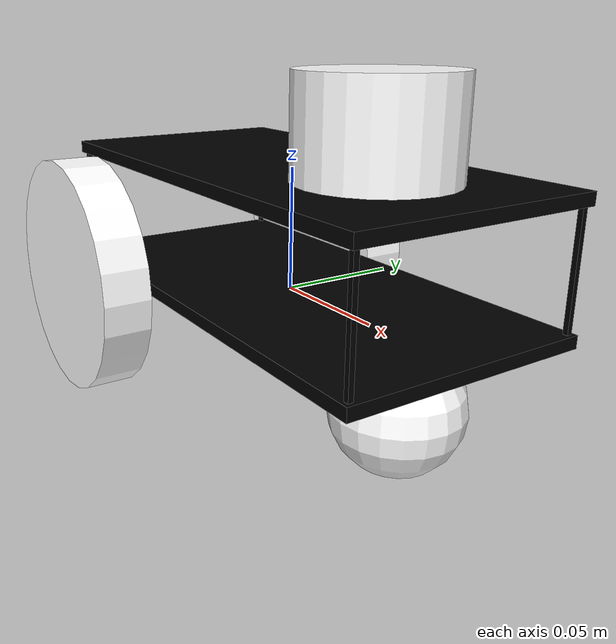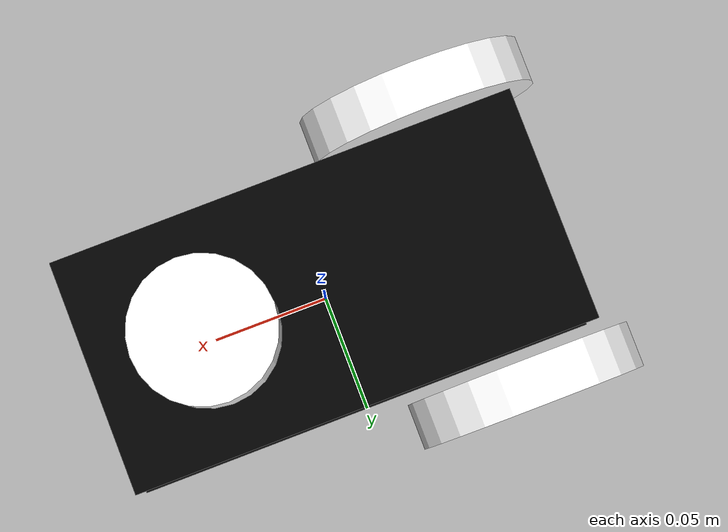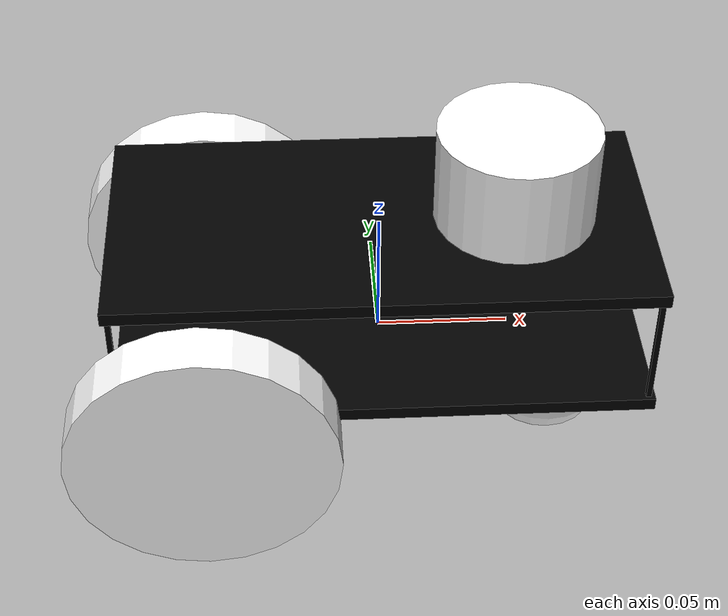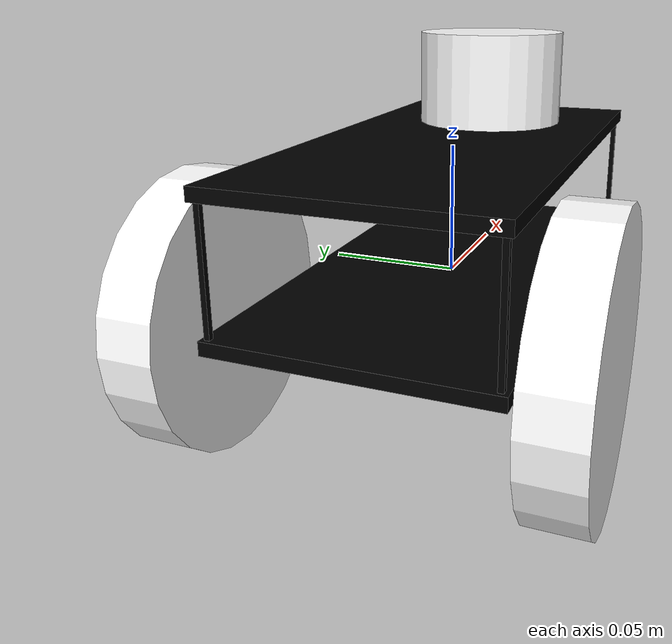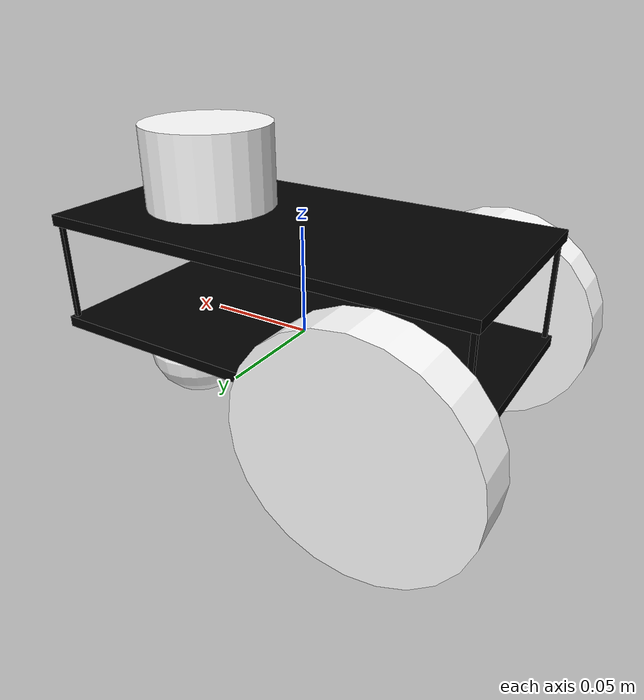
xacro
<?xml version="1.0"?>
<robot name="jo_bot" xmlns:xacro="http://ros.org/wiki/xacro">

  <xacro:include filename="$(find my_robot_description)/urdf/my_robot.gazebo" />

  <xacro:property name="pi" value="3.1415926535897931" />
  <xacro:property name="base_width" value="0.1" />
  <xacro:property name="base_length" value="0.2" />
  <xacro:property name="base_height" value="0.005" />
  <xacro:property name="wheel_diameter" value="0.1" />
  <xacro:property name="wheel_width" value="0.02" />
  <xacro:property name="wheel_offset" value="0.005" />
  <xacro:property name="caster_wheel_diameter" value="${wheel_diameter/2}" />
  <xacro:property name="pillar_width" value="0.002" />
  <xacro:property name="pillar_length" value="0.002" />
  <xacro:property name="pillar_height" value="0.05" />
  <xacro:property name="laser_radius" value="0.03" />
  <xacro:property name="laser_height" value="0.04" />

  <xacro:macro name="box_inertia" params="m x y z">
          <inertia  ixx="${m*(y*y+z*z)/12}" ixy = "0" ixz = "0"
                    iyy="${m*(x*x+z*z)/12}" iyz = "0"
                    izz="${m*(x*x+z*z)/12}" />
  </xacro:macro>

  <xacro:macro name="cylinder_inertia" params="m r h">
      <inertia  ixx="${m*(3*r*r+h*h)/12}" ixy = "0" ixz = "0"
                    iyy="${m*(3*r*r+h*h)/12}" iyz = "0"
                    izz="${m*r*r/2}" />
  </xacro:macro>

  <xacro:macro name="sphere_inertia" params="m r">
          <inertia  ixx="${2*m*r*r/5}" ixy = "0" ixz = "0"
                    iyy="${2*m*r*r/5}" iyz = "0"
                    izz="${2*m*r*r/5}" />
  </xacro:macro>

  <xacro:macro name="box_inertial" params="m x y z">
    <inertial>
      <origin xyz="0 0 0" rpy=" 0 0 0"/>
      <mass value="${m}" />
      <xacro:box_inertia m="${m}" x="${x}" y ="${y}" z="${z}" />
    </inertial>
  </xacro:macro>

  <xacro:macro name="cylinder_inertial" params="m r h">
    <inertial>
      <mass value="${m}" />
      <xacro:cylinder_inertia m="${m}" r="${r}" h="${h}" />
      <origin xyz="0 0 0" rpy="0 ${pi/2} 0"/>
    </inertial>
  </xacro:macro>

  <xacro:macro name="cylinder_inertial_sensor" params="m r h">
    <inertial>
      <mass value="${m}" />
      <xacro:cylinder_inertia m="${m}" r="${r}" h="${h}" />
      <origin xyz="0 0 0" rpy="0 0 0"/>
    </inertial>
  </xacro:macro>

  <xacro:macro name="sphere_inertial" params="m r">
    <inertial>
      <mass value="${m}" />
      <xacro:sphere_inertia m="${m}" r="${r}" />
    </inertial>
  </xacro:macro>

  <link name="base_footprint" />

  <joint name="base_footprint_joint" type="fixed">
    <parent link="base_footprint" />
    <child link="base_link" />
    <origin xyz="0 0 0" rpy="0 0 ${-pi / 2}" />
  </joint>

  <link name="base_link">
    <visual>
      <geometry>
        <box size="${base_width} ${base_length} ${base_height}" />
      </geometry>
      <material name="black">
        <color rgba="0.0 0.0 0.0 1.0"/>
      </material>
    </visual>
    <collision>
      <geometry>
        <box size="${base_width} ${base_length} ${base_height}" />
      </geometry>
    </collision>
    <xacro:box_inertial m="5" x="${base_width}" y="${base_length}" z="${base_height}"/>
  </link>

  <xacro:macro name="wheel" params="prefix reflect">
    <link name="${prefix}_wheel">
      <visual>
        <origin xyz="0 0 0" rpy="0 ${pi/2} 0" />
        <geometry>
          <cylinder radius="${wheel_diameter/2}" length="${wheel_width}"/>
        </geometry>
        <material name="White">
          <color rgba="1.0 1.0 1.0 1.0"/>
        </material>
      </visual>
      <collision>
        <origin xyz="0 0 0" rpy="0 ${pi/2} 0" />
        <geometry>
          <cylinder radius="${wheel_diameter/2}" length="${wheel_width}"/>
        </geometry>
      </collision>
      <xacro:cylinder_inertial m="1" r="${wheel_diameter/2}" h="${wheel_width}"/>
    </link>
    <joint name="${prefix}_wheel_joint" type="continuous">
      <axis xyz="-1 0 0" rpy="0 0 0" />
      <parent link="base_link"/>
      <child link="${prefix}_wheel"/>
      <origin xyz="${reflect * base_width/2 + reflect * wheel_width/2 + reflect * wheel_offset} ${-base_length*0.333} 0" rpy="0 0 0"/>
    </joint>

  </xacro:macro>

  <xacro:wheel prefix="left" reflect="-1" />
  <xacro:wheel prefix="right" reflect="1" />

  <link name="caster_wheel">
    <visual>
      <geometry>
        <sphere radius="${wheel_diameter/4}" />
      </geometry>
      <material name="White" />
    </visual>
    <collision>
      <geometry>
        <sphere radius="${wheel_diameter/4}" />
      </geometry>
      <surface>
        <friction>
          <ode>
            <mu>0</mu>
            <mu2>0</mu2>
            <slip1>1.0</slip1>
            <slip2>1.0</slip2>
          </ode>
        </friction>
      </surface>
    </collision>
    <xacro:sphere_inertial m="5" r="${caster_wheel_diameter}"/>
  </link>

  <joint name="caster_wheel_joint" type="fixed">
    <parent link="base_link"/>
    <child link="caster_wheel"/>
    <origin xyz="0 ${base_length/9*3} ${-caster_wheel_diameter/2}" rpy="0 0 0"/>
  </joint>

  <xacro:macro name="front_pillar" params="prefix reflect">
    <link name="${prefix}_front_pillar">
      <visual>
        <geometry>
          <box size="${pillar_width} ${pillar_length} ${pillar_height}" />
        </geometry>
        <material name="black">
          <color rgba="0.0 0.0 0.0 1.0"/>
        </material>
      </visual>
      <collision>
        <geometry>
          <box size="${pillar_width} ${pillar_length} ${pillar_height}" />
        </geometry>
      </collision>
    <xacro:box_inertial m="1" x="${pillar_width}" y="${pillar_length}" z="${pillar_height}"/>
    </link>
    <joint name="${prefix}_front_pillar_joint" type="fixed">
      <parent link="base_link"/>
      <child link="${prefix}_front_pillar"/>
      <origin xyz="${reflect * base_width/2 - reflect * wheel_offset * 0.5} ${base_length*0.5 - wheel_offset * 0.5} ${pillar_height/2}" rpy="0 0 0"/>
    </joint>
  </xacro:macro>

  <xacro:macro name="back_pillar" params="prefix reflect">
    <link name="${prefix}_back_pillar">
      <visual>
        <geometry>
          <box size="${pillar_width} ${pillar_length} ${pillar_height}" />
        </geometry>
        <material name="black">
          <color rgba="0.0 0.0 0.0 1.0"/>
        </material>
      </visual>
      <collision>
        <geometry>
          <box size="${pillar_width} ${pillar_length} ${pillar_height}" />
        </geometry>
      </collision>
    <xacro:box_inertial m="1" x="${pillar_width}" y="${pillar_length}" z="${pillar_height}"/>
    </link>
    <joint name="${prefix}_back_pillar_joint" type="fixed">
      <parent link="base_link"/>
      <child link="${prefix}_back_pillar"/>
      <origin xyz="${reflect * base_width/2 - reflect * wheel_offset * 0.5} ${-base_length*0.5 + wheel_offset * 0.5} ${pillar_height/2}" rpy="0 0 0"/>
    </joint>
  </xacro:macro>

  <xacro:front_pillar prefix="left" reflect="-1" />
  <xacro:front_pillar prefix="right" reflect="1" />
  <xacro:back_pillar prefix="left" reflect="-1" />
  <xacro:back_pillar prefix="right" reflect="1" />

  <link name="top_link">
    <visual>
      <geometry>
        <box size="${base_width} ${base_length} ${base_height}" />
      </geometry>
      <material name="black">
        <color rgba="0.0 0.0 0.0 1.0"/>
      </material>
    </visual>
    <collision>
      <geometry>
        <box size="${base_width} ${base_length} ${base_height}" />
      </geometry>
    </collision>
    <xacro:box_inertial m="5" x="${base_width}" y="${base_length}" z="${base_height}"/>
  </link>

  <joint name="top_link_joint" type="fixed">
      <parent link="left_back_pillar"/>
      <child link="top_link"/>
      <origin xyz="${1 * base_width/2 - 1 * wheel_offset * 0.5} ${base_length*0.5 - wheel_offset * 0.5} ${pillar_height/2}" rpy="0 0 0"/>
  </joint>

   <link name="laser_scanner_link">
      <xacro:cylinder_inertial_sensor m="1" r="${laser_radius}" h="${laser_height}"/>

    <visual>
        <origin xyz="0 0 0" rpy="0 0 0" />
        <geometry>
        <cylinder radius="${laser_radius}" length="${laser_height}"/>
        </geometry>
        <material name="White" />
    </visual>

    <collision>
        <origin xyz="0 0 0" rpy="0 0 0"/>
        <geometry>
        <cylinder radius="${laser_radius}" length="${laser_height}"/>
        </geometry>
    </collision>
    </link>

    <joint name="laser_scanner_joint" type="fixed">
    <origin xyz="0 ${base_length*0.25} ${laser_height/2}" rpy="0 0 0"/>
    <parent link="top_link"/>
    <child link="laser_scanner_link"/>
  </joint>

  <!-- Gazebo plugin for ROS Control -->

</robot>
